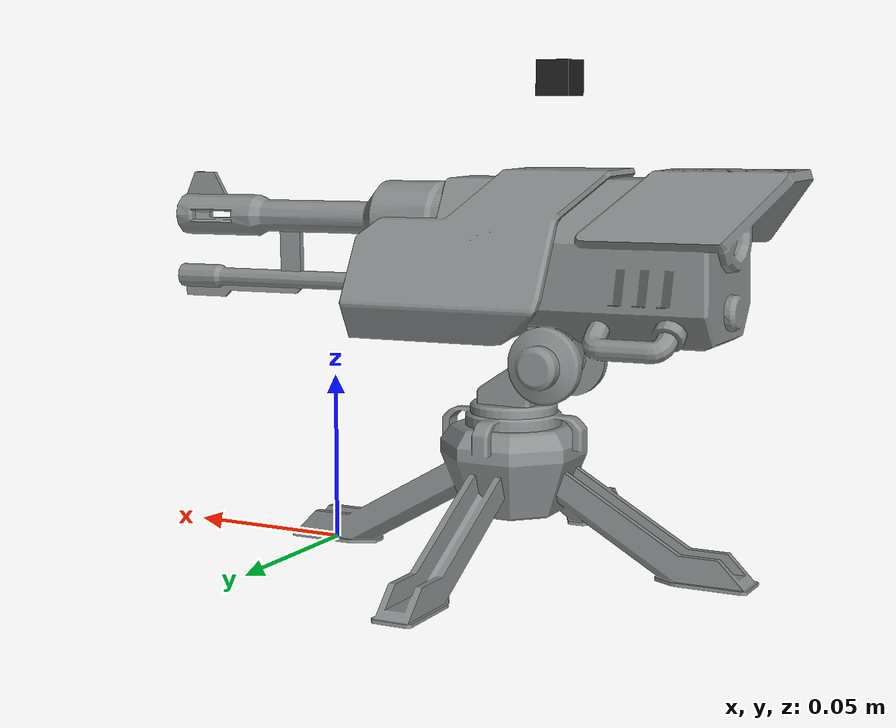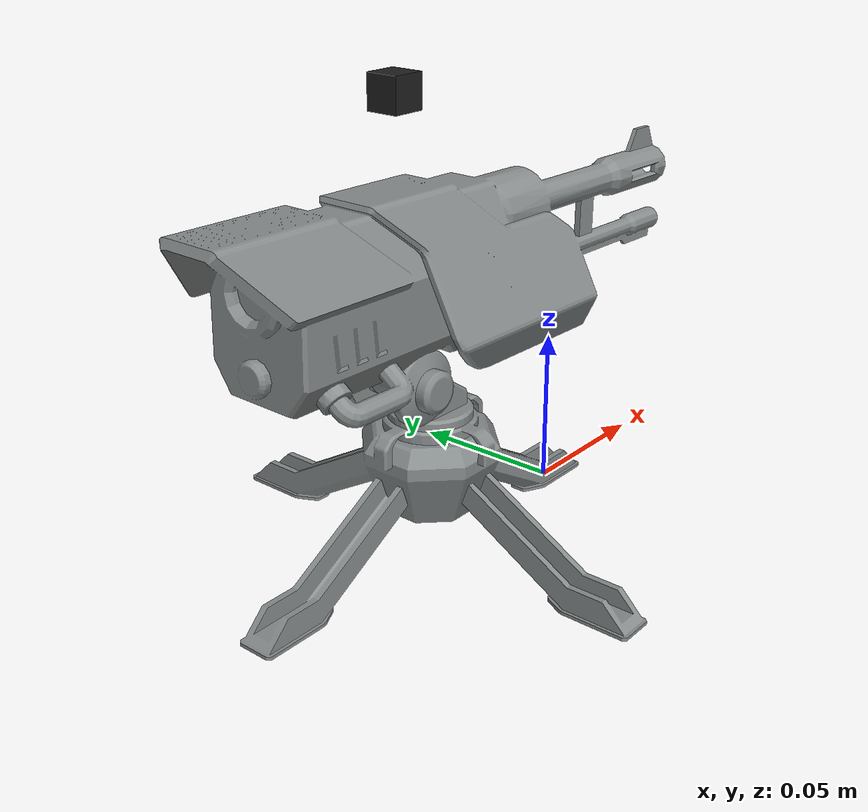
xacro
<robot xmlns:xacro="http://www.ros.org/wiki/xacro" name="turret_description">

  <xacro:property name="PI" value="3.1415926535897931"/>
  <xacro:property name="joint_effort" value="100.0"/>
  <xacro:property name="joint_velocity" value="3.14"/>
  <xacro:property name="joint_damping" value="0.1"/>
  <xacro:property name="joint_friction" value="0.1"/>

  <material name="grey">
    <color rgba="0.52941 0.54902 0.54902 1"/>
  </material>

  <link name="world"/>
  <joint name="world_fixed" type="fixed">
    <parent link="world"/>
    <child link="base_link"/>
    <origin xyz="0 0 0" rpy="0 0 0"/>
  </joint>

  <link name="base_link">
    <inertial>
      <origin xyz="-0.059907 1.301E-17 0.022839" rpy="0 0 0" />
      <mass value="0.28603" />
      <inertia ixx="0.00013769" ixy="0.0" ixz="0.0" iyy="0.00013769" iyz="0.0" izz="0.00022916" />
    </inertial>
    <visual>
      <geometry>
        <mesh filename="package://turret_description/meshes/base_link.STL" />
      </geometry>
      <material name="grey"/>
    </visual>
    <collision>
      <geometry>
        <mesh filename="package://turret_description/meshes/base_link.STL" />
      </geometry>
    </collision>
  </link>

  <link name="Horizontal_Link">
    <inertial>
      <origin xyz="-0.0013345 1.7795E-05 0.0067059" rpy="0 0 0" />
      <mass value="0.059322" />
      <inertia ixx="4.4326E-06" ixy="0.0" ixz="8.3795E-07" iyy="4.8715E-06" iyz="0.0" izz="3.5927E-06" />
    </inertial>
    <visual>
      <geometry>
        <mesh filename="package://turret_description/meshes/Horizontal_Link.STL" />
      </geometry>
      <material name="grey"/>
    </visual>
    <collision>
      <geometry>
        <mesh filename="package://turret_description/meshes/Horizontal_Link.STL" />
      </geometry>
    </collision>
  </link>

  <joint name="Horizontal_Joint" type="revolute"> <origin xyz="-0.059907 0 0.038897" rpy="0 0 0" />
      <parent link="base_link" />
      <child link="Horizontal_Link" />
      <axis xyz="0 0 1" />
      <limit lower="-3.14" upper="3.14" effort="${joint_effort}" velocity="${joint_velocity}" />
      <dynamics damping="${joint_damping}" friction="${joint_friction}" />
  </joint>

  <link name="Vertical_Link">
    <inertial>
      <origin xyz="0.013867 0.027537 -1.0361E-08" rpy="0 0 0" />
      <mass value="0.664" />
      <inertia ixx="0.00023872" ixy="5.5153E-05" ixz="0.0" iyy="0.0011211" iyz="0.0" izz="0.0011439" />
    </inertial>
    <visual>
      <origin xyz="0 0 0" rpy="0 0 0" />
      <geometry>
        <mesh filename="package://turret_description/meshes/Vertical_Link.STL" />
      </geometry>
      <material name="grey"/>
    </visual>
    <collision>
      <origin xyz="0 0 0" rpy="0 0 0" />
      <geometry>
        <mesh filename="package://turret_description/meshes/Vertical_Link.STL" />
      </geometry>
    </collision>
  </link>

  <joint name="Vertical_Joint" type="revolute">
    <origin xyz="-0.014074 0.00018767 0.020525" rpy="1.5708 0 -0.013334" />
    <parent link="Horizontal_Link" />
    <child link="Vertical_Link" />
    <axis xyz="0 0 -1" />
    <limit lower="-0.262" upper="0.785" effort="${joint_effort}" velocity="${joint_velocity}" />
    <dynamics damping="${joint_damping}" friction="${joint_friction}" />
  </joint>

  <link name="camera_link">
      <visual>
        <geometry>
          <box size="0.01 0.01 0.01"/>
        </geometry>
        <material name="black"/>
      </visual>
      <collision>
        <geometry>
          <box size="0.01 0.01 0.01"/>
        </geometry>
      </collision>
      <inertial>
        <mass value="0.1"/>
        <inertia ixx="0.0001" ixy="0" ixz="0" iyy="0.0001" iyz="0" izz="0.0001"/>
      </inertial>
    </link>

  <joint name="camera_fixed_joint" type="fixed">
    <parent link="Vertical_Link"/>
    <child link="camera_link"/>
    <origin xyz="0.0 0.08 0.0" rpy="0 0 0"/>
  </joint>

  <link name="camera_optical_frame"/>

  <joint name="camera_optical_joint" type="fixed">
    <parent link="camera_link"/>
    <child link="camera_optical_frame"/>
    <origin xyz="0 0 0" rpy="-1.5708 0 -1.5708"/>
  </joint>
<gazebo reference="base_link">
    <material>
      <ambient>0.53 0.55 0.55 1</ambient>
      <diffuse>0.53 0.55 0.55 1</diffuse>
      <specular>0.1 0.1 0.1 1</specular>
      <emissive>0 0 0 1</emissive>
    </material>
  </gazebo>

  <gazebo reference="Horizontal_Link">
    <material>
      <ambient>0.53 0.55 0.55 1</ambient>
      <diffuse>0.53 0.55 0.55 1</diffuse>
      <specular>0.1 0.1 0.1 1</specular>
    </material>
  </gazebo>

  <gazebo reference="Vertical_Link">
    <material>
      <ambient>0.53 0.55 0.55 1</ambient>
      <diffuse>0.53 0.55 0.55 1</diffuse>
      <specular>0.1 0.1 0.1 1</specular>
    </material>
  </gazebo>

<gazebo reference="camera_link">
  <sensor type="camera" name="camera_sensor">
    <always_on>1</always_on>
    <update_rate>30.0</update_rate>

    <camera name="camera">
      <horizontal_fov>1.047</horizontal_fov>
      <image>
        <width>640</width>
        <height>480</height>
        <format>R8G8B8</format>
      </image>
      <clip>
          <near>0.02</near>
          <far>300</far>
      </clip>
      <noise>
          <type>gaussian</type>
          <mean>0.0</mean>
          <stddev>0.007</stddev>
      </noise>
    </camera>

    <plugin name="camera_controller" filename="libgazebo_ros_camera.so">
      <ros>
        <namespace>/turret</namespace>
        <remapping>image_raw:=/camera/image_raw</remapping>
        <remapping>camera_info:=/camera/camera_info</remapping>
      </ros>
      <camera_name>camera</camera_name>
      <frame_name>camera_optical_frame</frame_name>
      <hack_baseline>0.07</hack_baseline>
    </plugin>
  </sensor>
</gazebo>

<gazebo>
  <plugin name="gazebo_ros2_control" filename="libgazebo_ros2_control.so">
    <parameters>$(find turret_simulation)/config/turret_controllers.yaml</parameters>
    <ros>
      <remapping>robot_description:=robot_description</remapping>
    </ros>
  </plugin>
</gazebo>

<ros2_control name="GazeboSystem" type="system">
  <hardware>
    <plugin>gazebo_ros2_control/GazeboSystem</plugin>
  </hardware>
  <joint name="Horizontal_Joint">
    <command_interface name="position"/>
    <command_interface name="velocity"/>
    <state_interface name="position"/>
    <state_interface name="velocity"/>
    </joint>
  <joint name="Vertical_Joint">
    <command_interface name="position"/>
    <command_interface name="velocity"/>
    <state_interface name="position"/>
    <state_interface name="velocity"/>
    </joint>
</ros2_control>

</robot>
